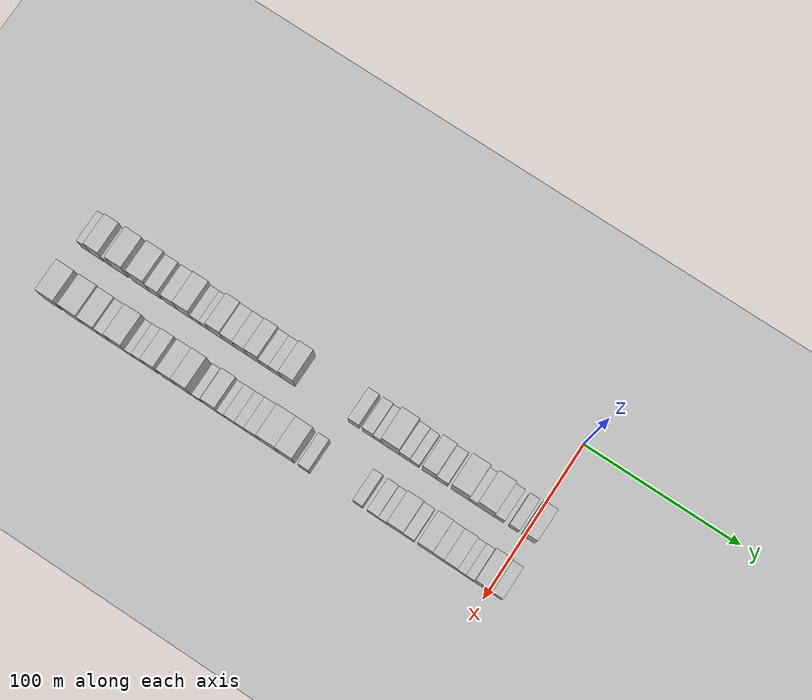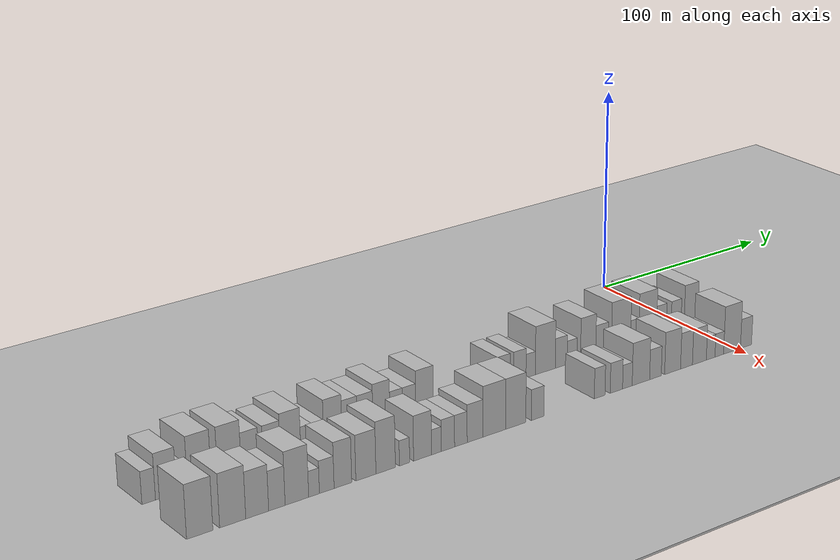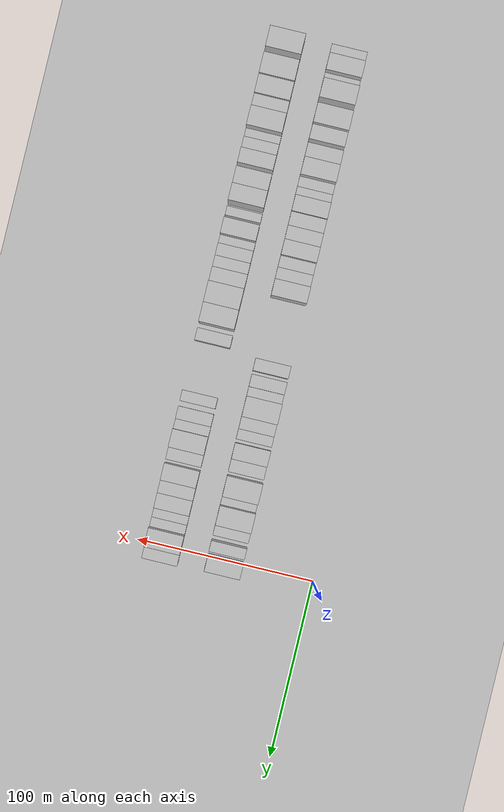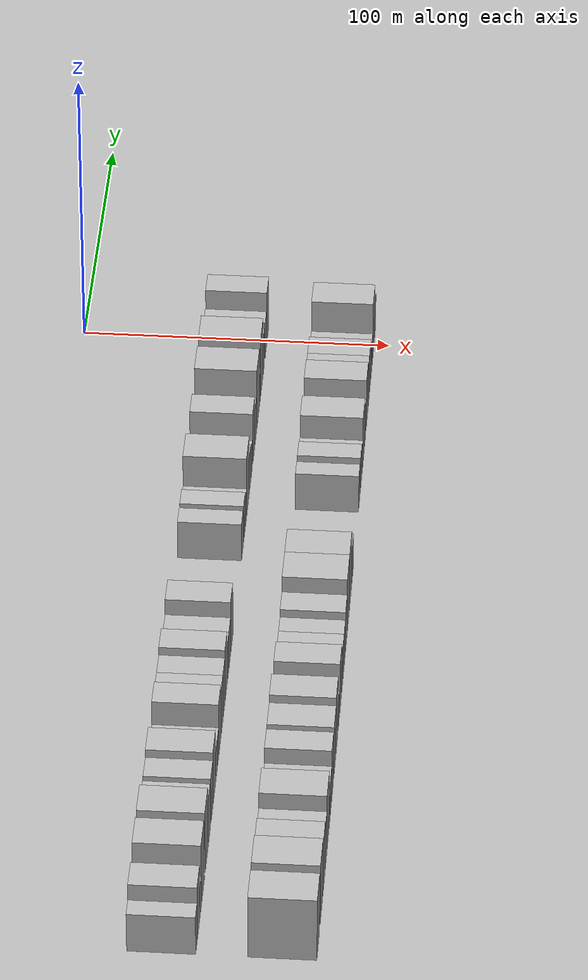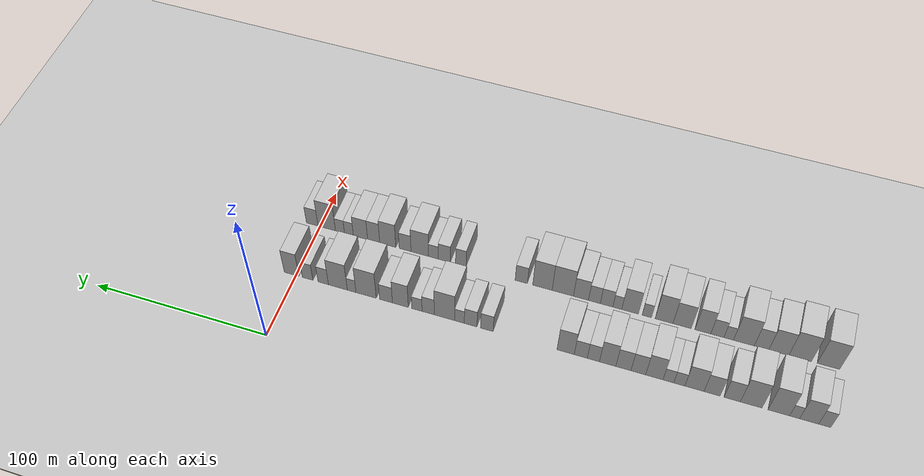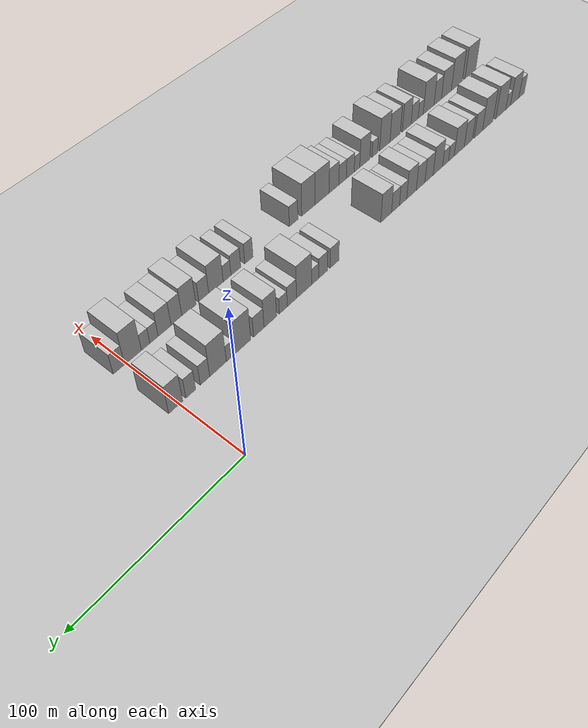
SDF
<sdf version="1.6">
 <world name="default">
  <include><name>ground_plane_1</name><uri>model://HANNAS_ground_plane</uri></include>
  <include>
   <name>ground_plane_2</name>
   <uri>model://HANNAS_ground_plane</uri>
   <pose>100 0 0  0 0 0</pose>
  </include>
  <model name="building_1">
   <static>1</static>
   <pose>50.0000 -286.9700 0 0.000000 0.000000 0.000000</pose>
   <link name="link">
    <pose>0 0 7.50 0 0 0</pose>
    <collision name="collision"><geometry><box><size>20.0000 6.0599 15.0000</size></box></geometry></collision>
    <visual name="visual">
     <cast_shadows>0</cast_shadows>
     <geometry><box><size>20.0000 6.0599 15.0000</size></box></geometry>
     <material>
      <script>
       <uri>model://HANNAS_wall/materials/scripts</uri>
       <uri>model://HANNAS_wall/materials/textures</uri>
       <name>vrc/HANNAS_wall</name>
      </script>
     </material>
    </visual>
   </link>
  </model>
  <model name="building_2">
   <static>1</static>
   <pose>50.0000 -279.1994 0 0.000000 0.000000 0.000000</pose>
   <link name="link">
    <pose>0 0 10.50 0 0 0</pose>
    <collision name="collision"><geometry><box><size>20.0000 9.4813 21.0000</size></box></geometry></collision>
    <visual name="visual">
     <cast_shadows>0</cast_shadows>
     <geometry><box><size>20.0000 9.4813 21.0000</size></box></geometry>
     <material>
      <script>
       <uri>model://HANNAS_wall/materials/scripts</uri>
       <uri>model://HANNAS_wall/materials/textures</uri>
       <name>vrc/HANNAS_wall</name>
      </script>
     </material>
    </visual>
   </link>
  </model>
  <model name="building_3">
   <static>1</static>
   <pose>50.0000 -271.9404 0 0.000000 0.000000 0.000000</pose>
   <link name="link">
    <pose>0 0 6.00 0 0 0</pose>
    <collision name="collision"><geometry><box><size>20.0000 5.0366 12.0000</size></box></geometry></collision>
    <visual name="visual">
     <cast_shadows>0</cast_shadows>
     <geometry><box><size>20.0000 5.0366 12.0000</size></box></geometry>
     <material>
      <script>
       <uri>model://HANNAS_wall/materials/scripts</uri>
       <uri>model://HANNAS_wall/materials/textures</uri>
       <name>vrc/HANNAS_wall</name>
      </script>
     </material>
    </visual>
   </link>
  </model>
  <model name="building_4">
   <static>1</static>
   <pose>50.0000 -263.9885 0 0.000000 0.000000 0.000000</pose>
   <link name="link">
    <pose>0 0 12.00 0 0 0</pose>
    <collision name="collision"><geometry><box><size>20.0000 10.8672 24.0000</size></box></geometry></collision>
    <visual name="visual">
     <cast_shadows>0</cast_shadows>
     <geometry><box><size>20.0000 10.8672 24.0000</size></box></geometry>
     <material>
      <script>
       <uri>model://HANNAS_wall/materials/scripts</uri>
       <uri>model://HANNAS_wall/materials/textures</uri>
       <name>vrc/HANNAS_wall</name>
      </script>
     </material>
    </visual>
   </link>
  </model>
  <model name="building_5">
   <static>1</static>
   <pose>50.0000 -250.0232 0 0.000000 0.000000 0.000000</pose>
   <link name="link">
    <pose>0 0 12.00 0 0 0</pose>
    <collision name="collision"><geometry><box><size>20.0000 11.0633 24.0000</size></box></geometry></collision>
    <visual name="visual">
     <cast_shadows>0</cast_shadows>
     <geometry><box><size>20.0000 11.0633 24.0000</size></box></geometry>
     <material>
      <script>
       <uri>model://HANNAS_wall/materials/scripts</uri>
       <uri>model://HANNAS_wall/materials/textures</uri>
       <name>vrc/HANNAS_wall</name>
      </script>
     </material>
    </visual>
   </link>
  </model>
  <model name="building_6">
   <static>1</static>
   <pose>50.0000 -240.3113 0 0.000000 0.000000 0.000000</pose>
   <link name="link">
    <pose>0 0 9.00 0 0 0</pose>
    <collision name="collision"><geometry><box><size>20.0000 8.3603 18.0000</size></box></geometry></collision>
    <visual name="visual">
     <cast_shadows>0</cast_shadows>
     <geometry><box><size>20.0000 8.3603 18.0000</size></box></geometry>
     <material>
      <script>
       <uri>model://HANNAS_wall/materials/scripts</uri>
       <uri>model://HANNAS_wall/materials/textures</uri>
       <name>vrc/HANNAS_wall</name>
      </script>
     </material>
    </visual>
   </link>
  </model>
  <model name="building_7">
   <static>1</static>
   <pose>50.0000 -229.9773 0 0.000000 0.000000 0.000000</pose>
   <link name="link">
    <pose>0 0 9.00 0 0 0</pose>
    <collision name="collision"><geometry><box><size>20.0000 8.3078 18.0000</size></box></geometry></collision>
    <visual name="visual">
     <cast_shadows>0</cast_shadows>
     <geometry><box><size>20.0000 8.3078 18.0000</size></box></geometry>
     <material>
      <script>
       <uri>model://HANNAS_wall/materials/scripts</uri>
       <uri>model://HANNAS_wall/materials/textures</uri>
       <name>vrc/HANNAS_wall</name>
      </script>
     </material>
    </visual>
   </link>
  </model>
  <model name="building_8">
   <static>1</static>
   <pose>50.0000 -220.8334 0 0.000000 0.000000 0.000000</pose>
   <link name="link">
    <pose>0 0 10.50 0 0 0</pose>
    <collision name="collision"><geometry><box><size>20.0000 9.9800 21.0000</size></box></geometry></collision>
    <visual name="visual">
     <cast_shadows>0</cast_shadows>
     <geometry><box><size>20.0000 9.9800 21.0000</size></box></geometry>
     <material>
      <script>
       <uri>model://HANNAS_wall/materials/scripts</uri>
       <uri>model://HANNAS_wall/materials/textures</uri>
       <name>vrc/HANNAS_wall</name>
      </script>
     </material>
    </visual>
   </link>
  </model>
  <model name="building_9">
   <static>1</static>
   <pose>50.0000 -212.9741 0 0.000000 0.000000 0.000000</pose>
   <link name="link">
    <pose>0 0 6.00 0 0 0</pose>
    <collision name="collision"><geometry><box><size>20.0000 5.7386 12.0000</size></box></geometry></collision>
    <visual name="visual">
     <cast_shadows>0</cast_shadows>
     <geometry><box><size>20.0000 5.7386 12.0000</size></box></geometry>
     <material>
      <script>
       <uri>model://HANNAS_wall/materials/scripts</uri>
       <uri>model://HANNAS_wall/materials/textures</uri>
       <name>vrc/HANNAS_wall</name>
      </script>
     </material>
    </visual>
   </link>
  </model>
  <model name="building_10">
   <static>1</static>
   <pose>50.0000 -207.2779 0 0.000000 0.000000 0.000000</pose>
   <link name="link">
    <pose>0 0 6.00 0 0 0</pose>
    <collision name="collision"><geometry><box><size>20.0000 5.6538 12.0000</size></box></geometry></collision>
    <visual name="visual">
     <cast_shadows>0</cast_shadows>
     <geometry><box><size>20.0000 5.6538 12.0000</size></box></geometry>
     <material>
      <script>
       <uri>model://HANNAS_wall/materials/scripts</uri>
       <uri>model://HANNAS_wall/materials/textures</uri>
       <name>vrc/HANNAS_wall</name>
      </script>
     </material>
    </visual>
   </link>
  </model>
  <model name="building_11">
   <static>1</static>
   <pose>50.0000 -199.9034 0 0.000000 0.000000 0.000000</pose>
   <link name="link">
    <pose>0 0 10.50 0 0 0</pose>
    <collision name="collision"><geometry><box><size>20.0000 9.0951 21.0000</size></box></geometry></collision>
    <visual name="visual">
     <cast_shadows>0</cast_shadows>
     <geometry><box><size>20.0000 9.0951 21.0000</size></box></geometry>
     <material>
      <script>
       <uri>model://HANNAS_wall/materials/scripts</uri>
       <uri>model://HANNAS_wall/materials/textures</uri>
       <name>vrc/HANNAS_wall</name>
      </script>
     </material>
    </visual>
   </link>
  </model>
  <model name="building_12">
   <static>1</static>
   <pose>50.0000 -191.4771 0 0.000000 0.000000 0.000000</pose>
   <link name="link">
    <pose>0 0 9.00 0 0 0</pose>
    <collision name="collision"><geometry><box><size>20.0000 7.7576 18.0000</size></box></geometry></collision>
    <visual name="visual">
     <cast_shadows>0</cast_shadows>
     <geometry><box><size>20.0000 7.7576 18.0000</size></box></geometry>
     <material>
      <script>
       <uri>model://HANNAS_wall/materials/scripts</uri>
       <uri>model://HANNAS_wall/materials/textures</uri>
       <name>vrc/HANNAS_wall</name>
      </script>
     </material>
    </visual>
   </link>
  </model>
  <model name="building_13">
   <static>1</static>
   <pose>50.0000 -183.5973 0 0.000000 0.000000 0.000000</pose>
   <link name="link">
    <pose>0 0 9.00 0 0 0</pose>
    <collision name="collision"><geometry><box><size>20.0000 8.0020 18.0000</size></box></geometry></collision>
    <visual name="visual">
     <cast_shadows>0</cast_shadows>
     <geometry><box><size>20.0000 8.0020 18.0000</size></box></geometry>
     <material>
      <script>
       <uri>model://HANNAS_wall/materials/scripts</uri>
       <uri>model://HANNAS_wall/materials/textures</uri>
       <name>vrc/HANNAS_wall</name>
      </script>
     </material>
    </visual>
   </link>
  </model>
  <model name="building_14">
   <static>1</static>
   <pose>50.0000 -175.2231 0 0.000000 0.000000 0.000000</pose>
   <link name="link">
    <pose>0 0 10.50 0 0 0</pose>
    <collision name="collision"><geometry><box><size>20.0000 8.7465 21.0000</size></box></geometry></collision>
    <visual name="visual">
     <cast_shadows>0</cast_shadows>
     <geometry><box><size>20.0000 8.7465 21.0000</size></box></geometry>
     <material>
      <script>
       <uri>model://HANNAS_wall/materials/scripts</uri>
       <uri>model://HANNAS_wall/materials/textures</uri>
       <name>vrc/HANNAS_wall</name>
      </script>
     </material>
    </visual>
   </link>
  </model>
  <model name="building_15">
   <static>1</static>
   <pose>50.0000 -167.5827 0 0.000000 0.000000 0.000000</pose>
   <link name="link">
    <pose>0 0 7.50 0 0 0</pose>
    <collision name="collision"><geometry><box><size>20.0000 6.5344 15.0000</size></box></geometry></collision>
    <visual name="visual">
     <cast_shadows>0</cast_shadows>
     <geometry><box><size>20.0000 6.5344 15.0000</size></box></geometry>
     <material>
      <script>
       <uri>model://HANNAS_wall/materials/scripts</uri>
       <uri>model://HANNAS_wall/materials/textures</uri>
       <name>vrc/HANNAS_wall</name>
      </script>
     </material>
    </visual>
   </link>
  </model>
  <model name="building_16">
   <static>1</static>
   <pose>50.0000 -160.8261 0 0.000000 0.000000 0.000000</pose>
   <link name="link">
    <pose>0 0 7.50 0 0 0</pose>
    <collision name="collision"><geometry><box><size>20.0000 6.9788 15.0000</size></box></geometry></collision>
    <visual name="visual">
     <cast_shadows>0</cast_shadows>
     <geometry><box><size>20.0000 6.9788 15.0000</size></box></geometry>
     <material>
      <script>
       <uri>model://HANNAS_wall/materials/scripts</uri>
       <uri>model://HANNAS_wall/materials/textures</uri>
       <name>vrc/HANNAS_wall</name>
      </script>
     </material>
    </visual>
   </link>
  </model>
  <model name="building_17">
   <static>1</static>
   <pose>50.0000 -152.6693 0 0.000000 0.000000 0.000000</pose>
   <link name="link">
    <pose>0 0 10.50 0 0 0</pose>
    <collision name="collision"><geometry><box><size>20.0000 9.3348 21.0000</size></box></geometry></collision>
    <visual name="visual">
     <cast_shadows>0</cast_shadows>
     <geometry><box><size>20.0000 9.3348 21.0000</size></box></geometry>
     <material>
      <script>
       <uri>model://HANNAS_wall/materials/scripts</uri>
       <uri>model://HANNAS_wall/materials/textures</uri>
       <name>vrc/HANNAS_wall</name>
      </script>
     </material>
    </visual>
   </link>
  </model>
  <model name="building_18">
   <static>1</static>
   <pose>50.0000 -109.4901 0 0.000000 0.000000 0.000000</pose>
   <link name="link">
    <pose>0 0 7.50 0 0 0</pose>
    <collision name="collision"><geometry><box><size>20.0000 7.0079 15.0000</size></box></geometry></collision>
    <visual name="visual">
     <cast_shadows>0</cast_shadows>
     <geometry><box><size>20.0000 7.0079 15.0000</size></box></geometry>
     <material>
      <script>
       <uri>model://HANNAS_wall/materials/scripts</uri>
       <uri>model://HANNAS_wall/materials/textures</uri>
       <name>vrc/HANNAS_wall</name>
      </script>
     </material>
    </visual>
   </link>
  </model>
  <model name="building_19">
   <static>1</static>
   <pose>50.0000 -100.4679 0 0.000000 0.000000 0.000000</pose>
   <link name="link">
    <pose>0 0 7.50 0 0 0</pose>
    <collision name="collision"><geometry><box><size>20.0000 7.0365 15.0000</size></box></geometry></collision>
    <visual name="visual">
     <cast_shadows>0</cast_shadows>
     <geometry><box><size>20.0000 7.0365 15.0000</size></box></geometry>
     <material>
      <script>
       <uri>model://HANNAS_wall/materials/scripts</uri>
       <uri>model://HANNAS_wall/materials/textures</uri>
       <name>vrc/HANNAS_wall</name>
      </script>
     </material>
    </visual>
   </link>
  </model>
  <model name="building_20">
   <static>1</static>
   <pose>50.0000 -94.2557 0 0.000000 0.000000 0.000000</pose>
   <link name="link">
    <pose>0 0 6.00 0 0 0</pose>
    <collision name="collision"><geometry><box><size>20.0000 5.3881 12.0000</size></box></geometry></collision>
    <visual name="visual">
     <cast_shadows>0</cast_shadows>
     <geometry><box><size>20.0000 5.3881 12.0000</size></box></geometry>
     <material>
      <script>
       <uri>model://HANNAS_wall/materials/scripts</uri>
       <uri>model://HANNAS_wall/materials/textures</uri>
       <name>vrc/HANNAS_wall</name>
      </script>
     </material>
    </visual>
   </link>
  </model>
  <model name="building_21">
   <static>1</static>
   <pose>50.0000 -85.8278 0 0.000000 0.000000 0.000000</pose>
   <link name="link">
    <pose>0 0 12.00 0 0 0</pose>
    <collision name="collision"><geometry><box><size>20.0000 11.4677 24.0000</size></box></geometry></collision>
    <visual name="visual">
     <cast_shadows>0</cast_shadows>
     <geometry><box><size>20.0000 11.4677 24.0000</size></box></geometry>
     <material>
      <script>
       <uri>model://HANNAS_wall/materials/scripts</uri>
       <uri>model://HANNAS_wall/materials/textures</uri>
       <name>vrc/HANNAS_wall</name>
      </script>
     </material>
    </visual>
   </link>
  </model>
  <model name="building_22">
   <static>1</static>
   <pose>50.0000 -76.6382 0 0.000000 0.000000 0.000000</pose>
   <link name="link">
    <pose>0 0 7.50 0 0 0</pose>
    <collision name="collision"><geometry><box><size>20.0000 6.9115 15.0000</size></box></geometry></collision>
    <visual name="visual">
     <cast_shadows>0</cast_shadows>
     <geometry><box><size>20.0000 6.9115 15.0000</size></box></geometry>
     <material>
      <script>
       <uri>model://HANNAS_wall/materials/scripts</uri>
       <uri>model://HANNAS_wall/materials/textures</uri>
       <name>vrc/HANNAS_wall</name>
      </script>
     </material>
    </visual>
   </link>
  </model>
  <model name="building_23">
   <static>1</static>
   <pose>50.0000 -70.2696 0 0.000000 0.000000 0.000000</pose>
   <link name="link">
    <pose>0 0 6.00 0 0 0</pose>
    <collision name="collision"><geometry><box><size>20.0000 5.8257 12.0000</size></box></geometry></collision>
    <visual name="visual">
     <cast_shadows>0</cast_shadows>
     <geometry><box><size>20.0000 5.8257 12.0000</size></box></geometry>
     <material>
      <script>
       <uri>model://HANNAS_wall/materials/scripts</uri>
       <uri>model://HANNAS_wall/materials/textures</uri>
       <name>vrc/HANNAS_wall</name>
      </script>
     </material>
    </visual>
   </link>
  </model>
  <model name="building_24">
   <static>1</static>
   <pose>50.0000 -60.8436 0 0.000000 0.000000 0.000000</pose>
   <link name="link">
    <pose>0 0 10.50 0 0 0</pose>
    <collision name="collision"><geometry><box><size>20.0000 9.0262 21.0000</size></box></geometry></collision>
    <visual name="visual">
     <cast_shadows>0</cast_shadows>
     <geometry><box><size>20.0000 9.0262 21.0000</size></box></geometry>
     <material>
      <script>
       <uri>model://HANNAS_wall/materials/scripts</uri>
       <uri>model://HANNAS_wall/materials/textures</uri>
       <name>vrc/HANNAS_wall</name>
      </script>
     </material>
    </visual>
   </link>
  </model>
  <model name="building_25">
   <static>1</static>
   <pose>50.0000 -52.6606 0 0.000000 0.000000 0.000000</pose>
   <link name="link">
    <pose>0 0 7.50 0 0 0</pose>
    <collision name="collision"><geometry><box><size>20.0000 7.3399 15.0000</size></box></geometry></collision>
    <visual name="visual">
     <cast_shadows>0</cast_shadows>
     <geometry><box><size>20.0000 7.3399 15.0000</size></box></geometry>
     <material>
      <script>
       <uri>model://HANNAS_wall/materials/scripts</uri>
       <uri>model://HANNAS_wall/materials/textures</uri>
       <name>vrc/HANNAS_wall</name>
      </script>
     </material>
    </visual>
   </link>
  </model>
  <model name="building_26">
   <static>1</static>
   <pose>50.0000 -41.1593 0 0.000000 0.000000 0.000000</pose>
   <link name="link">
    <pose>0 0 12.00 0 0 0</pose>
    <collision name="collision"><geometry><box><size>20.0000 11.6628 24.0000</size></box></geometry></collision>
    <visual name="visual">
     <cast_shadows>0</cast_shadows>
     <geometry><box><size>20.0000 11.6628 24.0000</size></box></geometry>
     <material>
      <script>
       <uri>model://HANNAS_wall/materials/scripts</uri>
       <uri>model://HANNAS_wall/materials/textures</uri>
       <name>vrc/HANNAS_wall</name>
      </script>
     </material>
    </visual>
   </link>
  </model>
  <model name="building_27">
   <static>1</static>
   <pose>50.0000 -32.8306 0 0.000000 0.000000 0.000000</pose>
   <link name="link">
    <pose>0 0 6.00 0 0 0</pose>
    <collision name="collision"><geometry><box><size>20.0000 4.9946 12.0000</size></box></geometry></collision>
    <visual name="visual">
     <cast_shadows>0</cast_shadows>
     <geometry><box><size>20.0000 4.9946 12.0000</size></box></geometry>
     <material>
      <script>
       <uri>model://HANNAS_wall/materials/scripts</uri>
       <uri>model://HANNAS_wall/materials/textures</uri>
       <name>vrc/HANNAS_wall</name>
      </script>
     </material>
    </visual>
   </link>
  </model>
  <model name="building_28">
   <static>1</static>
   <pose>50.0000 -24.8068 0 0.000000 0.000000 0.000000</pose>
   <link name="link">
    <pose>0 0 12.00 0 0 0</pose>
    <collision name="collision"><geometry><box><size>20.0000 11.0529 24.0000</size></box></geometry></collision>
    <visual name="visual">
     <cast_shadows>0</cast_shadows>
     <geometry><box><size>20.0000 11.0529 24.0000</size></box></geometry>
     <material>
      <script>
       <uri>model://HANNAS_wall/materials/scripts</uri>
       <uri>model://HANNAS_wall/materials/textures</uri>
       <name>vrc/HANNAS_wall</name>
      </script>
     </material>
    </visual>
   </link>
  </model>
  <model name="building_29">
   <static>1</static>
   <pose>50.0000 -16.2372 0 0.000000 0.000000 0.000000</pose>
   <link name="link">
    <pose>0 0 7.50 0 0 0</pose>
    <collision name="collision"><geometry><box><size>20.0000 6.0862 15.0000</size></box></geometry></collision>
    <visual name="visual">
     <cast_shadows>0</cast_shadows>
     <geometry><box><size>20.0000 6.0862 15.0000</size></box></geometry>
     <material>
      <script>
       <uri>model://HANNAS_wall/materials/scripts</uri>
       <uri>model://HANNAS_wall/materials/textures</uri>
       <name>vrc/HANNAS_wall</name>
      </script>
     </material>
    </visual>
   </link>
  </model>
  <model name="building_30">
   <static>1</static>
   <pose>50.0000 -7.0716 0 0.000000 0.000000 0.000000</pose>
   <link name="link">
    <pose>0 0 7.50 0 0 0</pose>
    <collision name="collision"><geometry><box><size>20.0000 6.2450 15.0000</size></box></geometry></collision>
    <visual name="visual">
     <cast_shadows>0</cast_shadows>
     <geometry><box><size>20.0000 6.2450 15.0000</size></box></geometry>
     <material>
      <script>
       <uri>model://HANNAS_wall/materials/scripts</uri>
       <uri>model://HANNAS_wall/materials/textures</uri>
       <name>vrc/HANNAS_wall</name>
      </script>
     </material>
    </visual>
   </link>
  </model>
  <model name="building_31">
   <static>1</static>
   <pose>50.0000 2.4005 0 0.000000 0.000000 0.000000</pose>
   <link name="link">
    <pose>0 0 10.50 0 0 0</pose>
    <collision name="collision"><geometry><box><size>20.0000 8.6992 21.0000</size></box></geometry></collision>
    <visual name="visual">
     <cast_shadows>0</cast_shadows>
     <geometry><box><size>20.0000 8.6992 21.0000</size></box></geometry>
     <material>
      <script>
       <uri>model://HANNAS_wall/materials/scripts</uri>
       <uri>model://HANNAS_wall/materials/textures</uri>
       <name>vrc/HANNAS_wall</name>
      </script>
     </material>
    </visual>
   </link>
  </model>
  <model name="building_63">
   <static>1</static>
   <pose>85.0000 -284.2010 0 0.000000 0.000000 0.000000</pose>
   <link name="link">
    <pose>0 0 12.00 0 0 0</pose>
    <collision name="collision"><geometry><box><size>20.0000 11.5980 24.0000</size></box></geometry></collision>
    <visual name="visual">
     <cast_shadows>0</cast_shadows>
     <geometry><box><size>20.0000 11.5980 24.0000</size></box></geometry>
     <material>
      <script>
       <uri>model://HANNAS_wall/materials/scripts</uri>
       <uri>model://HANNAS_wall/materials/textures</uri>
       <name>vrc/HANNAS_wall</name>
      </script>
     </material>
    </visual>
   </link>
  </model>
  <model name="building_64">
   <static>1</static>
   <pose>85.0000 -269.5314 0 0.000000 0.000000 0.000000</pose>
   <link name="link">
    <pose>0 0 12.00 0 0 0</pose>
    <collision name="collision"><geometry><box><size>20.0000 11.7412 24.0000</size></box></geometry></collision>
    <visual name="visual">
     <cast_shadows>0</cast_shadows>
     <geometry><box><size>20.0000 11.7412 24.0000</size></box></geometry>
     <material>
      <script>
       <uri>model://HANNAS_wall/materials/scripts</uri>
       <uri>model://HANNAS_wall/materials/textures</uri>
       <name>vrc/HANNAS_wall</name>
      </script>
     </material>
    </visual>
   </link>
  </model>
  <model name="building_65">
   <static>1</static>
   <pose>85.0000 -258.4380 0 0.000000 0.000000 0.000000</pose>
   <link name="link">
    <pose>0 0 10.50 0 0 0</pose>
    <collision name="collision"><geometry><box><size>20.0000 10.4457 21.0000</size></box></geometry></collision>
    <visual name="visual">
     <cast_shadows>0</cast_shadows>
     <geometry><box><size>20.0000 10.4457 21.0000</size></box></geometry>
     <material>
      <script>
       <uri>model://HANNAS_wall/materials/scripts</uri>
       <uri>model://HANNAS_wall/materials/textures</uri>
       <name>vrc/HANNAS_wall</name>
      </script>
     </material>
    </visual>
   </link>
  </model>
  <model name="building_66">
   <static>1</static>
   <pose>85.0000 -249.4200 0 0.000000 0.000000 0.000000</pose>
   <link name="link">
    <pose>0 0 9.00 0 0 0</pose>
    <collision name="collision"><geometry><box><size>20.0000 7.5903 18.0000</size></box></geometry></collision>
    <visual name="visual">
     <cast_shadows>0</cast_shadows>
     <geometry><box><size>20.0000 7.5903 18.0000</size></box></geometry>
     <material>
      <script>
       <uri>model://HANNAS_wall/materials/scripts</uri>
       <uri>model://HANNAS_wall/materials/textures</uri>
       <name>vrc/HANNAS_wall</name>
      </script>
     </material>
    </visual>
   </link>
  </model>
  <model name="building_67">
   <static>1</static>
   <pose>85.0000 -240.1223 0 0.000000 0.000000 0.000000</pose>
   <link name="link">
    <pose>0 0 12.00 0 0 0</pose>
    <collision name="collision"><geometry><box><size>20.0000 11.0051 24.0000</size></box></geometry></collision>
    <visual name="visual">
     <cast_shadows>0</cast_shadows>
     <geometry><box><size>20.0000 11.0051 24.0000</size></box></geometry>
     <material>
      <script>
       <uri>model://HANNAS_wall/materials/scripts</uri>
       <uri>model://HANNAS_wall/materials/textures</uri>
       <name>vrc/HANNAS_wall</name>
      </script>
     </material>
    </visual>
   </link>
  </model>
  <model name="building_68">
   <static>1</static>
   <pose>85.0000 -232.0819 0 0.000000 0.000000 0.000000</pose>
   <link name="link">
    <pose>0 0 6.00 0 0 0</pose>
    <collision name="collision"><geometry><box><size>20.0000 5.0756 12.0000</size></box></geometry></collision>
    <visual name="visual">
     <cast_shadows>0</cast_shadows>
     <geometry><box><size>20.0000 5.0756 12.0000</size></box></geometry>
     <material>
      <script>
       <uri>model://HANNAS_wall/materials/scripts</uri>
       <uri>model://HANNAS_wall/materials/textures</uri>
       <name>vrc/HANNAS_wall</name>
      </script>
     </material>
    </visual>
   </link>
  </model>
  <model name="building_69">
   <static>1</static>
   <pose>85.0000 -226.0419 0 0.000000 0.000000 0.000000</pose>
   <link name="link">
    <pose>0 0 7.50 0 0 0</pose>
    <collision name="collision"><geometry><box><size>20.0000 7.0043 15.0000</size></box></geometry></collision>
    <visual name="visual">
     <cast_shadows>0</cast_shadows>
     <geometry><box><size>20.0000 7.0043 15.0000</size></box></geometry>
     <material>
      <script>
       <uri>model://HANNAS_wall/materials/scripts</uri>
       <uri>model://HANNAS_wall/materials/textures</uri>
       <name>vrc/HANNAS_wall</name>
      </script>
     </material>
    </visual>
   </link>
  </model>
  <model name="building_70">
   <static>1</static>
   <pose>85.0000 -218.3045 0 0.000000 0.000000 0.000000</pose>
   <link name="link">
    <pose>0 0 10.50 0 0 0</pose>
    <collision name="collision"><geometry><box><size>20.0000 8.4705 21.0000</size></box></geometry></collision>
    <visual name="visual">
     <cast_shadows>0</cast_shadows>
     <geometry><box><size>20.0000 8.4705 21.0000</size></box></geometry>
     <material>
      <script>
       <uri>model://HANNAS_wall/materials/scripts</uri>
       <uri>model://HANNAS_wall/materials/textures</uri>
       <name>vrc/HANNAS_wall</name>
      </script>
     </material>
    </visual>
   </link>
  </model>
  <model name="building_71">
   <static>1</static>
   <pose>85.0000 -207.1578 0 0.000000 0.000000 0.000000</pose>
   <link name="link">
    <pose>0 0 10.50 0 0 0</pose>
    <collision name="collision"><geometry><box><size>20.0000 9.8229 21.0000</size></box></geometry></collision>
    <visual name="visual">
     <cast_shadows>0</cast_shadows>
     <geometry><box><size>20.0000 9.8229 21.0000</size></box></geometry>
     <material>
      <script>
       <uri>model://HANNAS_wall/materials/scripts</uri>
       <uri>model://HANNAS_wall/materials/textures</uri>
       <name>vrc/HANNAS_wall</name>
      </script>
     </material>
    </visual>
   </link>
  </model>
  <model name="building_72">
   <static>1</static>
   <pose>85.0000 -197.4354 0 0.000000 0.000000 0.000000</pose>
   <link name="link">
    <pose>0 0 12.00 0 0 0</pose>
    <collision name="collision"><geometry><box><size>20.0000 9.6220 24.0000</size></box></geometry></collision>
    <visual name="visual">
     <cast_shadows>0</cast_shadows>
     <geometry><box><size>20.0000 9.6220 24.0000</size></box></geometry>
     <material>
      <script>
       <uri>model://HANNAS_wall/materials/scripts</uri>
       <uri>model://HANNAS_wall/materials/textures</uri>
       <name>vrc/HANNAS_wall</name>
      </script>
     </material>
    </visual>
   </link>
  </model>
  <model name="building_73">
   <static>1</static>
   <pose>85.0000 -188.0588 0 0.000000 0.000000 0.000000</pose>
   <link name="link">
    <pose>0 0 6.00 0 0 0</pose>
    <collision name="collision"><geometry><box><size>20.0000 5.1311 12.0000</size></box></geometry></collision>
    <visual name="visual">
     <cast_shadows>0</cast_shadows>
     <geometry><box><size>20.0000 5.1311 12.0000</size></box></geometry>
     <material>
      <script>
       <uri>model://HANNAS_wall/materials/scripts</uri>
       <uri>model://HANNAS_wall/materials/textures</uri>
       <name>vrc/HANNAS_wall</name>
      </script>
     </material>
    </visual>
   </link>
  </model>
  <model name="building_74">
   <static>1</static>
   <pose>85.0000 -178.9331 0 0.000000 0.000000 0.000000</pose>
   <link name="link">
    <pose>0 0 10.50 0 0 0</pose>
    <collision name="collision"><geometry><box><size>20.0000 9.1203 21.0000</size></box></geometry></collision>
    <visual name="visual">
     <cast_shadows>0</cast_shadows>
     <geometry><box><size>20.0000 9.1203 21.0000</size></box></geometry>
     <material>
      <script>
       <uri>model://HANNAS_wall/materials/scripts</uri>
       <uri>model://HANNAS_wall/materials/textures</uri>
       <name>vrc/HANNAS_wall</name>
      </script>
     </material>
    </visual>
   </link>
  </model>
  <model name="building_75">
   <static>1</static>
   <pose>85.0000 -171.9211 0 0.000000 0.000000 0.000000</pose>
   <link name="link">
    <pose>0 0 6.00 0 0 0</pose>
    <collision name="collision"><geometry><box><size>20.0000 4.9037 12.0000</size></box></geometry></collision>
    <visual name="visual">
     <cast_shadows>0</cast_shadows>
     <geometry><box><size>20.0000 4.9037 12.0000</size></box></geometry>
     <material>
      <script>
       <uri>model://HANNAS_wall/materials/scripts</uri>
       <uri>model://HANNAS_wall/materials/textures</uri>
       <name>vrc/HANNAS_wall</name>
      </script>
     </material>
    </visual>
   </link>
  </model>
  <model name="building_76">
   <static>1</static>
   <pose>85.0000 -166.0068 0 0.000000 0.000000 0.000000</pose>
   <link name="link">
    <pose>0 0 7.50 0 0 0</pose>
    <collision name="collision"><geometry><box><size>20.0000 6.9249 15.0000</size></box></geometry></collision>
    <visual name="visual">
     <cast_shadows>0</cast_shadows>
     <geometry><box><size>20.0000 6.9249 15.0000</size></box></geometry>
     <material>
      <script>
       <uri>model://HANNAS_wall/materials/scripts</uri>
       <uri>model://HANNAS_wall/materials/textures</uri>
       <name>vrc/HANNAS_wall</name>
      </script>
     </material>
    </visual>
   </link>
  </model>
  <model name="building_77">
   <static>1</static>
   <pose>85.0000 -159.2732 0 0.000000 0.000000 0.000000</pose>
   <link name="link">
    <pose>0 0 7.50 0 0 0</pose>
    <collision name="collision"><geometry><box><size>20.0000 6.5422 15.0000</size></box></geometry></collision>
    <visual name="visual">
     <cast_shadows>0</cast_shadows>
     <geometry><box><size>20.0000 6.5422 15.0000</size></box></geometry>
     <material>
      <script>
       <uri>model://HANNAS_wall/materials/scripts</uri>
       <uri>model://HANNAS_wall/materials/textures</uri>
       <name>vrc/HANNAS_wall</name>
      </script>
     </material>
    </visual>
   </link>
  </model>
  <model name="building_78">
   <static>1</static>
   <pose>85.0000 -151.8233 0 0.000000 0.000000 0.000000</pose>
   <link name="link">
    <pose>0 0 9.00 0 0 0</pose>
    <collision name="collision"><geometry><box><size>20.0000 8.3577 18.0000</size></box></geometry></collision>
    <visual name="visual">
     <cast_shadows>0</cast_shadows>
     <geometry><box><size>20.0000 8.3577 18.0000</size></box></geometry>
     <material>
      <script>
       <uri>model://HANNAS_wall/materials/scripts</uri>
       <uri>model://HANNAS_wall/materials/textures</uri>
       <name>vrc/HANNAS_wall</name>
      </script>
     </material>
    </visual>
   </link>
  </model>
  <model name="building_79">
   <static>1</static>
   <pose>85.0000 -141.6702 0 0.000000 0.000000 0.000000</pose>
   <link name="link">
    <pose>0 0 12.00 0 0 0</pose>
    <collision name="collision"><geometry><box><size>20.0000 11.9484 24.0000</size></box></geometry></collision>
    <visual name="visual">
     <cast_shadows>0</cast_shadows>
     <geometry><box><size>20.0000 11.9484 24.0000</size></box></geometry>
     <material>
      <script>
       <uri>model://HANNAS_wall/materials/scripts</uri>
       <uri>model://HANNAS_wall/materials/textures</uri>
       <name>vrc/HANNAS_wall</name>
      </script>
     </material>
    </visual>
   </link>
  </model>
  <model name="building_80">
   <static>1</static>
   <pose>85.0000 -130.2127 0 0.000000 0.000000 0.000000</pose>
   <link name="link">
    <pose>0 0 12.00 0 0 0</pose>
    <collision name="collision"><geometry><box><size>20.0000 10.9666 24.0000</size></box></geometry></collision>
    <visual name="visual">
     <cast_shadows>0</cast_shadows>
     <geometry><box><size>20.0000 10.9666 24.0000</size></box></geometry>
     <material>
      <script>
       <uri>model://HANNAS_wall/materials/scripts</uri>
       <uri>model://HANNAS_wall/materials/textures</uri>
       <name>vrc/HANNAS_wall</name>
      </script>
     </material>
    </visual>
   </link>
  </model>
  <model name="building_81">
   <static>1</static>
   <pose>85.0000 -118.2560 0 0.000000 0.000000 0.000000</pose>
   <link name="link">
    <pose>0 0 7.50 0 0 0</pose>
    <collision name="collision"><geometry><box><size>20.0000 6.9468 15.0000</size></box></geometry></collision>
    <visual name="visual">
     <cast_shadows>0</cast_shadows>
     <geometry><box><size>20.0000 6.9468 15.0000</size></box></geometry>
     <material>
      <script>
       <uri>model://HANNAS_wall/materials/scripts</uri>
       <uri>model://HANNAS_wall/materials/textures</uri>
       <name>vrc/HANNAS_wall</name>
      </script>
     </material>
    </visual>
   </link>
  </model>
  <model name="building_82">
   <static>1</static>
   <pose>85.0000 -83.5941 0 0.000000 0.000000 0.000000</pose>
   <link name="link">
    <pose>0 0 7.50 0 0 0</pose>
    <collision name="collision"><geometry><box><size>20.0000 6.1256 15.0000</size></box></geometry></collision>
    <visual name="visual">
     <cast_shadows>0</cast_shadows>
     <geometry><box><size>20.0000 6.1256 15.0000</size></box></geometry>
     <material>
      <script>
       <uri>model://HANNAS_wall/materials/scripts</uri>
       <uri>model://HANNAS_wall/materials/textures</uri>
       <name>vrc/HANNAS_wall</name>
      </script>
     </material>
    </visual>
   </link>
  </model>
  <model name="building_83">
   <static>1</static>
   <pose>85.0000 -73.9598 0 0.000000 0.000000 0.000000</pose>
   <link name="link">
    <pose>0 0 7.50 0 0 0</pose>
    <collision name="collision"><geometry><box><size>20.0000 7.1432 15.0000</size></box></geometry></collision>
    <visual name="visual">
     <cast_shadows>0</cast_shadows>
     <geometry><box><size>20.0000 7.1432 15.0000</size></box></geometry>
     <material>
      <script>
       <uri>model://HANNAS_wall/materials/scripts</uri>
       <uri>model://HANNAS_wall/materials/textures</uri>
       <name>vrc/HANNAS_wall</name>
      </script>
     </material>
    </visual>
   </link>
  </model>
  <model name="building_84">
   <static>1</static>
   <pose>85.0000 -67.5864 0 0.000000 0.000000 0.000000</pose>
   <link name="link">
    <pose>0 0 6.00 0 0 0</pose>
    <collision name="collision"><geometry><box><size>20.0000 5.6036 12.0000</size></box></geometry></collision>
    <visual name="visual">
     <cast_shadows>0</cast_shadows>
     <geometry><box><size>20.0000 5.6036 12.0000</size></box></geometry>
     <material>
      <script>
       <uri>model://HANNAS_wall/materials/scripts</uri>
       <uri>model://HANNAS_wall/materials/textures</uri>
       <name>vrc/HANNAS_wall</name>
      </script>
     </material>
    </visual>
   </link>
  </model>
  <model name="building_85">
   <static>1</static>
   <pose>85.0000 -59.6457 0 0.000000 0.000000 0.000000</pose>
   <link name="link">
    <pose>0 0 10.50 0 0 0</pose>
    <collision name="collision"><geometry><box><size>20.0000 10.2777 21.0000</size></box></geometry></collision>
    <visual name="visual">
     <cast_shadows>0</cast_shadows>
     <geometry><box><size>20.0000 10.2777 21.0000</size></box></geometry>
     <material>
      <script>
       <uri>model://HANNAS_wall/materials/scripts</uri>
       <uri>model://HANNAS_wall/materials/textures</uri>
       <name>vrc/HANNAS_wall</name>
      </script>
     </material>
    </visual>
   </link>
  </model>
  <model name="building_86">
   <static>1</static>
   <pose>85.0000 -51.0384 0 0.000000 0.000000 0.000000</pose>
   <link name="link">
    <pose>0 0 7.50 0 0 0</pose>
    <collision name="collision"><geometry><box><size>20.0000 6.9370 15.0000</size></box></geometry></collision>
    <visual name="visual">
     <cast_shadows>0</cast_shadows>
     <geometry><box><size>20.0000 6.9370 15.0000</size></box></geometry>
     <material>
      <script>
       <uri>model://HANNAS_wall/materials/scripts</uri>
       <uri>model://HANNAS_wall/materials/textures</uri>
       <name>vrc/HANNAS_wall</name>
      </script>
     </material>
    </visual>
   </link>
  </model>
  <model name="building_87">
   <static>1</static>
   <pose>85.0000 -40.7808 0 0.000000 0.000000 0.000000</pose>
   <link name="link">
    <pose>0 0 10.50 0 0 0</pose>
    <collision name="collision"><geometry><box><size>20.0000 9.5781 21.0000</size></box></geometry></collision>
    <visual name="visual">
     <cast_shadows>0</cast_shadows>
     <geometry><box><size>20.0000 9.5781 21.0000</size></box></geometry>
     <material>
      <script>
       <uri>model://HANNAS_wall/materials/scripts</uri>
       <uri>model://HANNAS_wall/materials/textures</uri>
       <name>vrc/HANNAS_wall</name>
      </script>
     </material>
    </visual>
   </link>
  </model>
  <model name="building_88">
   <static>1</static>
   <pose>85.0000 -32.3775 0 0.000000 0.000000 0.000000</pose>
   <link name="link">
    <pose>0 0 9.00 0 0 0</pose>
    <collision name="collision"><geometry><box><size>20.0000 7.2284 18.0000</size></box></geometry></collision>
    <visual name="visual">
     <cast_shadows>0</cast_shadows>
     <geometry><box><size>20.0000 7.2284 18.0000</size></box></geometry>
     <material>
      <script>
       <uri>model://HANNAS_wall/materials/scripts</uri>
       <uri>model://HANNAS_wall/materials/textures</uri>
       <name>vrc/HANNAS_wall</name>
      </script>
     </material>
    </visual>
   </link>
  </model>
  <model name="building_89">
   <static>1</static>
   <pose>85.0000 -24.4963 0 0.000000 0.000000 0.000000</pose>
   <link name="link">
    <pose>0 0 9.00 0 0 0</pose>
    <collision name="collision"><geometry><box><size>20.0000 8.5340 18.0000</size></box></geometry></collision>
    <visual name="visual">
     <cast_shadows>0</cast_shadows>
     <geometry><box><size>20.0000 8.5340 18.0000</size></box></geometry>
     <material>
      <script>
       <uri>model://HANNAS_wall/materials/scripts</uri>
       <uri>model://HANNAS_wall/materials/textures</uri>
       <name>vrc/HANNAS_wall</name>
      </script>
     </material>
    </visual>
   </link>
  </model>
  <model name="building_90">
   <static>1</static>
   <pose>85.0000 -17.5457 0 0.000000 0.000000 0.000000</pose>
   <link name="link">
    <pose>0 0 6.00 0 0 0</pose>
    <collision name="collision"><geometry><box><size>20.0000 5.3673 12.0000</size></box></geometry></collision>
    <visual name="visual">
     <cast_shadows>0</cast_shadows>
     <geometry><box><size>20.0000 5.3673 12.0000</size></box></geometry>
     <material>
      <script>
       <uri>model://HANNAS_wall/materials/scripts</uri>
       <uri>model://HANNAS_wall/materials/textures</uri>
       <name>vrc/HANNAS_wall</name>
      </script>
     </material>
    </visual>
   </link>
  </model>
  <model name="building_91">
   <static>1</static>
   <pose>85.0000 -12.1701 0 0.000000 0.000000 0.000000</pose>
   <link name="link">
    <pose>0 0 6.00 0 0 0</pose>
    <collision name="collision"><geometry><box><size>20.0000 5.3838 12.0000</size></box></geometry></collision>
    <visual name="visual">
     <cast_shadows>0</cast_shadows>
     <geometry><box><size>20.0000 5.3838 12.0000</size></box></geometry>
     <material>
      <script>
       <uri>model://HANNAS_wall/materials/scripts</uri>
       <uri>model://HANNAS_wall/materials/textures</uri>
       <name>vrc/HANNAS_wall</name>
      </script>
     </material>
    </visual>
   </link>
  </model>
  <model name="building_92">
   <static>1</static>
   <pose>85.0000 -4.1827 0 0.000000 0.000000 0.000000</pose>
   <link name="link">
    <pose>0 0 12.00 0 0 0</pose>
    <collision name="collision"><geometry><box><size>20.0000 10.5910 24.0000</size></box></geometry></collision>
    <visual name="visual">
     <cast_shadows>0</cast_shadows>
     <geometry><box><size>20.0000 10.5910 24.0000</size></box></geometry>
     <material>
      <script>
       <uri>model://HANNAS_wall/materials/scripts</uri>
       <uri>model://HANNAS_wall/materials/textures</uri>
       <name>vrc/HANNAS_wall</name>
      </script>
     </material>
    </visual>
   </link>
  </model>
  <model name="building_93">
   <static>1</static>
   <pose>85.0000 4.6324 0 0.000000 0.000000 0.000000</pose>
   <link name="link">
    <pose>0 0 7.50 0 0 0</pose>
    <collision name="collision"><geometry><box><size>20.0000 7.0393 15.0000</size></box></geometry></collision>
    <visual name="visual">
     <cast_shadows>0</cast_shadows>
     <geometry><box><size>20.0000 7.0393 15.0000</size></box></geometry>
     <material>
      <script>
       <uri>model://HANNAS_wall/materials/scripts</uri>
       <uri>model://HANNAS_wall/materials/textures</uri>
       <name>vrc/HANNAS_wall</name>
      </script>
     </material>
    </visual>
   </link>
  </model>
 </world>
</sdf>
